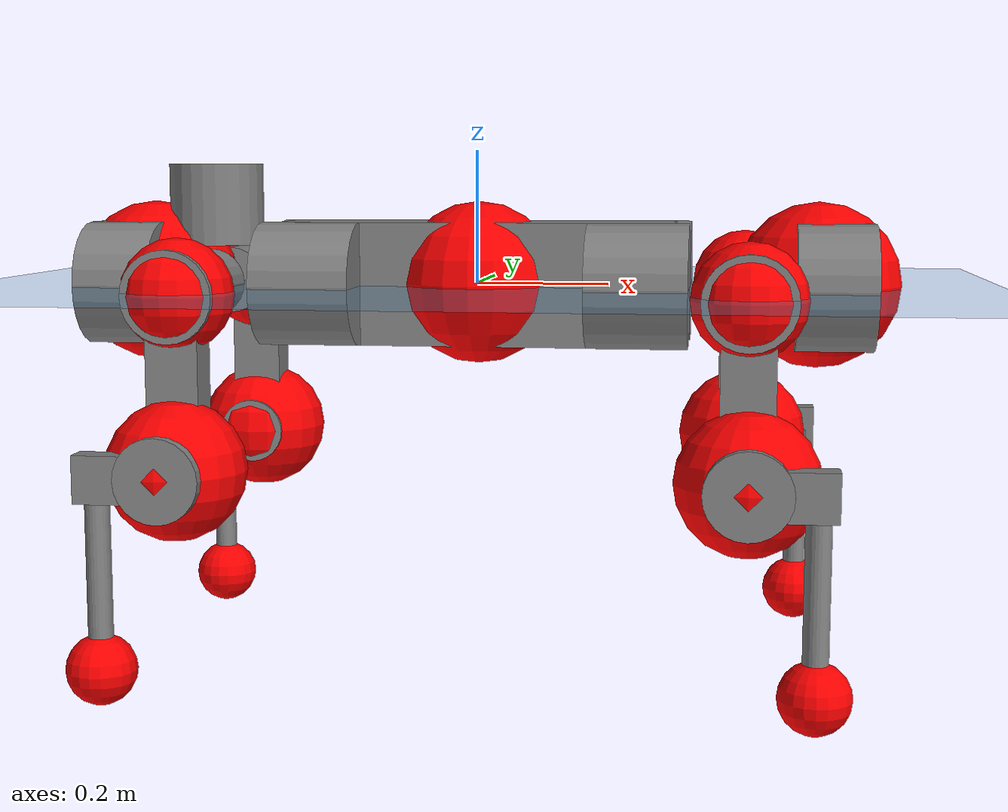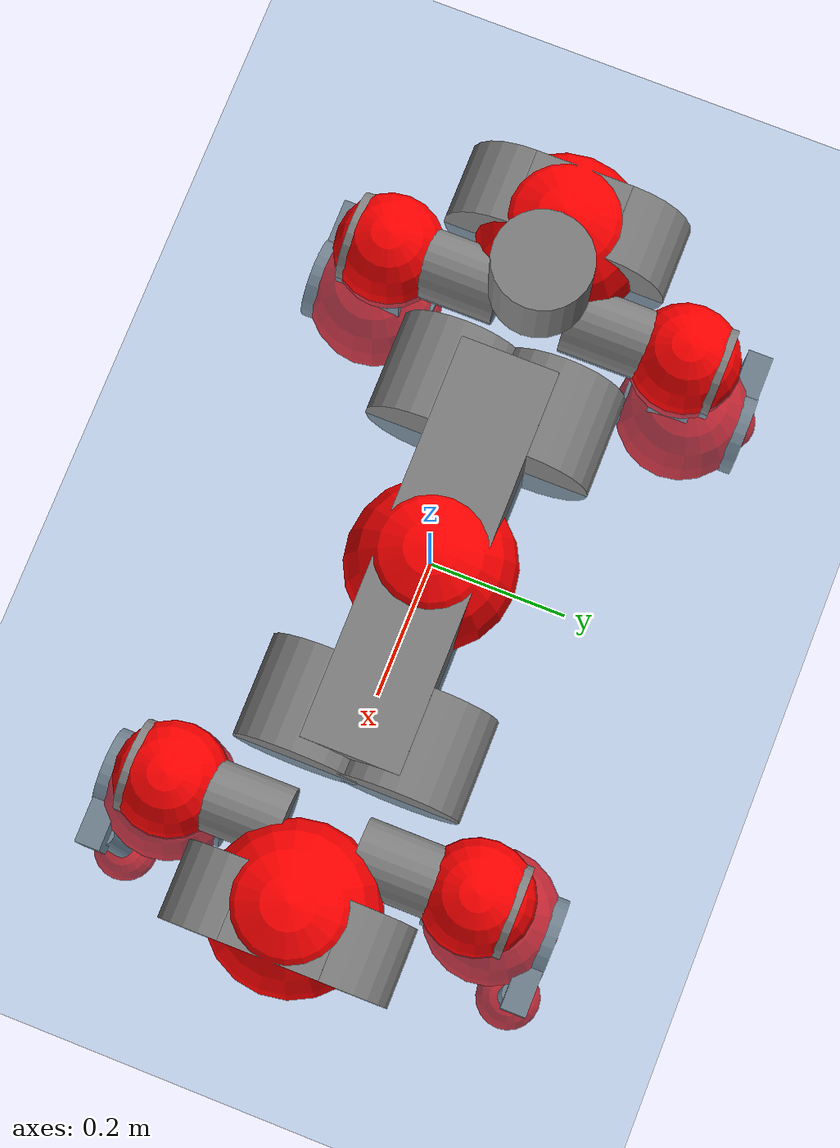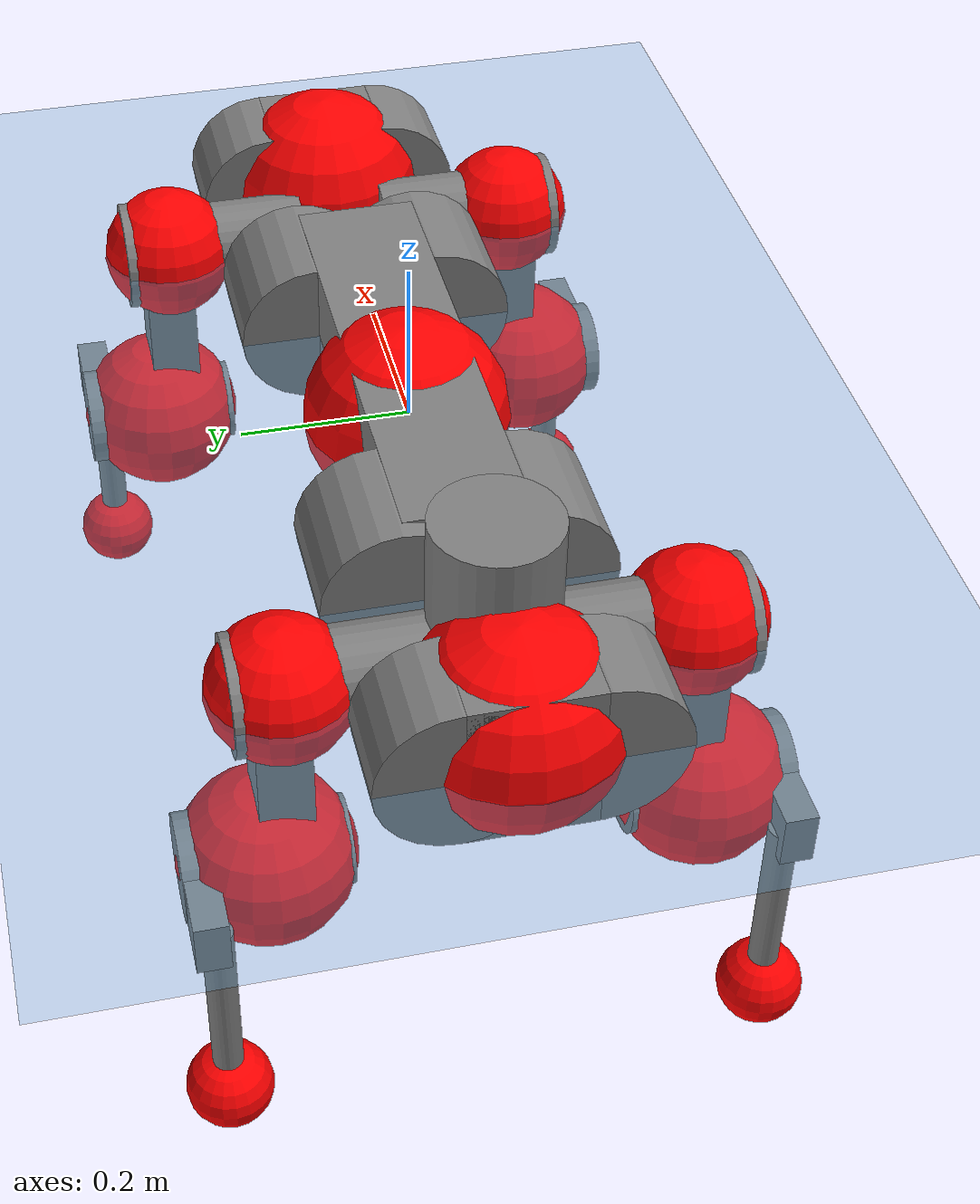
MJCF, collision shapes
<mujoco model="anymal_c">
  <compiler angle="radian" assetdir="assets" balanceinertia="true" inertiafromgeom="false"/>

  <option timestep="0.005" density="1.2" viscosity="2e-05"/>

  <size nkey="1"/>

  <visual>
    <quality shadowsize="8192"/>
    <map shadowclip="0.5"/>
  </visual>

  <default>
    <default class="/">
      <material specular="0" shininess="0.25"/>
      <geom contype="0" conaffinity="0" group="1" solref="-1000 -80"/>
      <site size="0.01 0.005 0.005" group="5"/>
      <general forcelimited="true" forcerange="-80 80" biastype="affine" gainprm="80" biasprm="0 -80 -2"/>
      <default class="anymal_c">
        <joint armature="0.01" damping="0.01" frictionloss="0.1"/>
        <default class="visual">
          <geom type="mesh" group="2"/>
          <default class="visual_zflip"/>
        </default>
        <default class="collision">
          <geom type="cylinder" group="3"/>
          <default class="foot">
            <geom size="0.03 0 0" type="sphere" condim="6" priority="1" friction="0.8 0.02 0.01" solimp="0.015 1 0.03"/>
          </default>
        </default>
      </default>
      <default class="reward_collision_sphere">
        <geom group="5" rgba="1 0 0 1"/>
      </default>
    </default>
  </default>

  <asset>
    <texture type="skybox" colorspace="auto" name="//unnamed_texture_0" builtin="gradient" rgb1="0.95 0.95 0.95" rgb2="0.95 0.95 0.95" width="100" height="600"/>
    <texture type="2d" colorspace="auto" name="texplane" builtin="checker" rgb1="0.345 0.575 0.748" rgb2="0.345 0.575 0.748" markrgb="1 1 1" width="512" height="512"/>
    <texture type="2d" colorspace="linear" name="base" file="base.png"/>
    <texture type="2d" colorspace="linear" name="top_shell" file="top_shell.png"/>
    <texture type="2d" colorspace="linear" name="bottom_shell" file="bottom_shell.png"/>
    <texture type="2d" colorspace="linear" name="remote" file="remote.png"/>
    <texture type="2d" colorspace="linear" name="hatch" file="hatch.png"/>
    <texture type="2d" colorspace="linear" name="handle" file="handle.png"/>
    <texture type="2d" colorspace="linear" name="face" file="face.png"/>
    <texture type="2d" colorspace="linear" name="battery" file="battery.png"/>
    <texture type="2d" colorspace="linear" name="lidar_cage" file="lidar_cage.png"/>
    <texture type="2d" colorspace="linear" name="depth_camera" file="depth_camera.png"/>
    <texture type="2d" colorspace="linear" name="wide_angle_camera" file="wide_angle_camera.png"/>
    <texture type="2d" colorspace="linear" name="lidar" file="lidar.png"/>
    <texture type="2d" colorspace="linear" name="drive" file="drive.png"/>
    <texture type="2d" colorspace="linear" name="hip_l" file="hip_l.png"/>
    <texture type="2d" colorspace="linear" name="shank_l" file="shank_l.png"/>
    <texture type="2d" colorspace="linear" name="foot" file="foot.png"/>
    <texture type="2d" colorspace="linear" name="thigh" file="thigh.png"/>
    <texture type="2d" colorspace="linear" name="shank_r" file="shank_r.png"/>
    <texture type="2d" colorspace="linear" name="hip_r" file="hip_r.png"/>
    <material name="MatPlane" class="/" texture="texplane" texuniform="true" texrepeat="2 2" specular="0.9" shininess="0.5"/>
    <material name="black_plastic" class="/" rgba="0.007 0.007 0.007 1"/>
    <material name="green" class="/" rgba="0.052 0.178 0.033 1"/>
    <material name="red" class="/" rgba="0.178 0.006 0.005 1"/>
    <material name="yellow" class="/" rgba="0.178 0.119 0.006 1"/>
    <material name="lwl" class="/" rgba="0.8 0.8 0.8 1"/>
    <material name="base" class="/" texture="base"/>
    <material name="top_shell" class="/" texture="top_shell"/>
    <material name="bottom_shell" class="/" texture="bottom_shell"/>
    <material name="hip_l" class="/" texture="hip_l"/>
    <material name="thigh" class="/" texture="thigh"/>
    <material name="shank_l" class="/" texture="shank_l"/>
    <material name="foot" class="/" texture="foot"/>
    <material name="hip_r" class="/" texture="hip_r"/>
    <material name="shank" class="/" texture="shank_r"/>
    <material name="hatch" class="/" texture="hatch"/>
    <material name="remote" class="/" texture="remote"/>
    <material name="handle" class="/" texture="handle"/>
    <material name="face" class="/" texture="face"/>
    <material name="depth_camera" class="/" texture="depth_camera"/>
    <material name="wide_angle_camera" class="/" texture="wide_angle_camera"/>
    <material name="battery" class="/" texture="battery"/>
    <material name="lidar_cage" class="/" texture="lidar_cage"/>
    <material name="lidar" class="/" texture="lidar"/>
    <material name="drive" class="/" texture="drive"/>
    <mesh name="base_0" class="/" file="base_0.obj"/>
    <mesh name="base_1" class="/" file="base_1.obj"/>
    <mesh name="base_2" class="/" file="base_2.obj"/>
    <mesh name="base_3" class="/" file="base_3.obj"/>
    <mesh name="base_4" class="/" file="base_4.obj"/>
    <mesh name="base_5" class="/" file="base_5.obj"/>
    <mesh name="top_shell" class="/" file="top_shell.obj"/>
    <mesh name="bottom_shell" class="/" file="bottom_shell.obj"/>
    <mesh name="remote" class="/" file="remote.obj"/>
    <mesh name="handle" class="/" file="handle.obj"/>
    <mesh name="face" class="/" file="face.obj"/>
    <mesh name="wide_angle_camera" class="/" file="wide_angle_camera.obj"/>
    <mesh name="depth_camera" class="/" file="depth_camera.obj"/>
    <mesh name="battery" class="/" file="battery.obj"/>
    <mesh name="lidar_cage" class="/" file="lidar_cage.obj"/>
    <mesh name="lidar" class="/" file="lidar.obj"/>
    <mesh name="drive" class="/" file="drive.obj"/>
    <mesh name="hip_l" class="/" file="hip_l.obj"/>
    <mesh name="thigh" class="/" file="thigh.obj"/>
    <mesh name="shank_l" class="/" file="shank_l.obj"/>
    <mesh name="foot" class="/" file="foot.obj"/>
    <mesh name="hip_r" class="/" file="hip_r.obj"/>
    <mesh name="hatch" class="/" file="hatch.obj"/>
    <mesh name="shank_r" class="/" file="shank_r.obj"/>
  </asset>

  <worldbody>
    <geom name="floor" class="/" size="100 100 0.125" type="plane" group="0" material="MatPlane"/>
    <light name="toplight_shadow" class="/" pos="0 0 5" dir="0.0990148 0.0990148 -0.990148" type="directional" ambient="0.04 0.04 0.04" diffuse="0.55 0.55 0.55" specular="0.12 0.12 0.12"/>
    <light name="toplight_fill" class="/" pos="0 0 5" dir="0.0990148 0.0990148 -0.990148" type="directional" castshadow="false" ambient="0.04 0.04 0.04" diffuse="0.3 0.3 0.3" specular="0.08 0.08 0.08"/>
    <body name="trunk" childclass="anymal_c" pos="0.00165615 0.00220237 0.00102532" quat="1 -0.000169618 -0.000345166 0.000103242">
      <inertial pos="0.00285074 0.000618474 0.0428853" quat="0.499019 0.490288 0.509739 0.500763" mass="21.2778" diaginertia="1.25005 0.921771 0.118074"/>
      <joint name="//unnamed_joint_0" type="free" armature="0" damping="0" frictionloss="0"/>
      <geom name="//unnamed_geom_1" class="visual" material="green" mesh="base_0"/>
      <geom name="//unnamed_geom_2" class="visual" material="yellow" mesh="base_1"/>
      <geom name="//unnamed_geom_3" class="visual" material="red" mesh="base_2"/>
      <geom name="//unnamed_geom_4" class="visual" material="black_plastic" mesh="base_3"/>
      <geom name="//unnamed_geom_5" class="visual" material="lwl" mesh="base_4"/>
      <geom name="//unnamed_geom_6" class="visual" material="base" mesh="base_5"/>
      <geom name="trunk_1" class="collision" size="0.298516 0.0720557 0.092643" type="box"/>
      <geom name="trunk_2" class="collision" size="0.092643 0.0746291" pos="0.246379 0.0748439 0" quat="0.707107 0 0.707107 0"/>
      <geom name="trunk_3" class="collision" size="0.092643 0.0746291" pos="-0.246379 0.0748439 0" quat="0.707107 0 0.707107 0"/>
      <geom name="trunk_4" class="collision" size="0.092643 0.0746291" pos="0.246379 -0.0748439 0" quat="0.707107 0 0.707107 0"/>
      <geom name="trunk_5" class="collision" size="0.092643 0.0746291" pos="-0.246379 -0.0748439 0" quat="0.707107 0 0.707107 0"/>
      <geom name="//unnamed_geom_12" class="visual" material="top_shell" mesh="top_shell"/>
      <geom name="//unnamed_geom_13" class="visual" material="bottom_shell" mesh="bottom_shell"/>
      <geom name="//unnamed_geom_14" class="visual" material="remote" mesh="remote"/>
      <geom name="//unnamed_geom_15" class="visual" material="handle" mesh="handle"/>
      <geom name="//unnamed_geom_16" class="visual" pos="0.469537 0 0" quat="1 0 0 0" material="face" mesh="face"/>
      <geom name="trunk_6" class="collision" size="0.0566152 0.0720557 0.092643" pos="0.531839 0 0" type="box"/>
      <geom name="//unnamed_geom_18" class="collision" size="0.092643 0.0566152" pos="0.531839 0.0748439 0" quat="0.707107 0 0.707107 0"/>
      <geom name="//unnamed_geom_19" class="collision" size="0.092643 0.0566152" pos="0.531839 -0.0748439 0" quat="0.707107 0 0.707107 0"/>
      <geom name="//unnamed_geom_20" class="visual" pos="0.522937 0 -0.0240002" quat="0.965926 0 0.258819 0" material="depth_camera" mesh="depth_camera"/>
      <geom name="//unnamed_geom_21" class="visual" pos="0.581115 0 0.0132653" material="wide_angle_camera" mesh="wide_angle_camera"/>
      <geom name="//unnamed_geom_22" class="visual_zflip" pos="-0.469537 0 0" quat="0 0 0 1" material="face" mesh="face"/>
      <geom name="trunk_7" class="collision" size="0.0566152 0.0720557 0.092643" pos="-0.531839 0 0" quat="0 0 0 1" type="box"/>
      <geom name="//unnamed_geom_24" class="collision" size="0.092643 0.0566152" pos="-0.531839 -0.0748439 0" quat="0 -0.707107 0 0.707107"/>
      <geom name="//unnamed_geom_25" class="collision" size="0.092643 0.0566152" pos="-0.531839 0.0748439 0" quat="0 -0.707107 0 0.707107"/>
      <geom name="//unnamed_geom_26" class="visual" pos="-0.522937 0 -0.0240002" quat="0 -0.258819 0 0.965926" material="depth_camera" mesh="depth_camera"/>
      <geom name="//unnamed_geom_27" class="visual_zflip" pos="-0.581115 0 0.0132653" quat="0 0 0 1" material="wide_angle_camera" mesh="wide_angle_camera"/>
      <geom name="//unnamed_geom_28" class="visual" material="battery" mesh="battery"/>
      <geom name="//unnamed_geom_29" class="visual" pos="0 0.0809063 0.0276165" quat="0.683013 -0.183013 0.183013 0.683013" material="depth_camera" mesh="depth_camera"/>
      <geom name="//unnamed_geom_30" class="visual" pos="0 -0.0809063 0.0276165" quat="0.683013 0.183013 0.183013 -0.683013" material="depth_camera" mesh="depth_camera"/>
      <geom name="//unnamed_geom_31" class="visual" pos="-0.412331 0 0.0651301" quat="1 0 0 0" material="lidar_cage" mesh="lidar_cage"/>
      <geom name="trunk_8" class="collision" size="0.0720557 0.061762" pos="-0.412331 0 0.118298"/>
      <geom name="//unnamed_geom_33" class="visual" pos="-0.412331 -2.4979e-05 0.126007" quat="0.707107 0 0 -0.707107" material="lidar" mesh="lidar"/>
      <geom name="//unnamed_geom_34" class="visual" pos="0.33972 0.111132 3.15805e-09" quat="0.258819 0.965926 0 0" material="drive" mesh="drive"/>
      <geom name="//unnamed_geom_35" class="visual" pos="0.33972 -0.111132 -3.15805e-09" quat="0.258819 -0.965926 0 0" material="drive" mesh="drive"/>
      <geom name="//unnamed_geom_36" class="visual" pos="-0.33972 0.111132 -3.15805e-09" quat="0 0 0.965926 -0.258819" material="drive" mesh="drive"/>
      <geom name="//unnamed_geom_37" class="visual" pos="-0.33972 -0.111132 3.15805e-09" quat="0 0 -0.965926 -0.258819" material="drive" mesh="drive"/>
      <geom name="//unnamed_geom_38" class="visual" pos="0.131402 0 0.064687" quat="1 0 0 0" material="hatch" mesh="hatch"/>
      <geom name="//unnamed_geom_39" class="reward_collision_sphere" size="0.123524"/>
      <geom name="//unnamed_geom_40" class="reward_collision_sphere" size="0.123524" pos="0.50975 0 0"/>
      <geom name="//unnamed_geom_41" class="reward_collision_sphere" size="0.123524" pos="-0.50975 0 0"/>
      <site name="imu" pos="0.287684 0.0116171 0.0369865" size="0.0102937"/>
      <camera name="track" pos="0 -2.1384 0" quat="0.707107 0.707107 0 0" mode="trackcom"/>
      <camera name="ego_camera" pos="0.50975 0 -0.035445" quat="-0.5 -0.5 0.5 0.5"/>
      <body name="LF_HIP" pos="0.339413 0.110524 -0.00342412" quat="0.258208 0.966089 0.000169163 -0.000700648">
        <inertial pos="0.0630552 -0.0182804 -0.00755213" quat="-0.127705 0.709025 -0.13762 0.679733" mass="3.04372" diaginertia="0.0109807 0.00671055 0.00183149"/>
        <joint name="LF_HAA" pos="0 0 0" axis="1 -4.76111e-05 3.99756e-05" range="-0.699085 0.48574" armature="0.00992672" damping="0.0117514" frictionloss="0.116633"/>
        <geom name="//unnamed_geom_42" class="visual" pos="0 0.000185774 -3.05132e-05" quat="0.258819 -0.965926 0 0" material="hip_l" mesh="hip_l"/>
        <geom name="//unnamed_geom_43" class="visual" pos="0.0678534 -0.0813167 -0.0455941" quat="0.183013 -0.683013 0.683013 0.183013" material="drive" mesh="drive"/>
        <geom name="//unnamed_geom_44" class="collision" size="0.0514683 0.0720557" pos="0.0678534 -0.0127874 -0.00611868" quat="-0.353553 -0.612372 0.612372 -0.353553"/>
        <body name="LF_THIGH" pos="0.0652749 -0.0783499 -0.039313" quat="0.182512 -0.683628 0.682373 0.1836">
          <inertial pos="0.0358575 0.000283699 -0.218126" quat="0.99316 -0.00224634 -0.0894251 0.0750365" mass="3.23348" diaginertia="0.0547233 0.0407929 0.00224836"/>
          <joint name="LF_HFE" pos="0 0 0" axis="0.999877 -0.0046518 0.0150012" range="-3.10008 3.1357" armature="0.011505" damping="0" frictionloss="0.0884743"/>
          <geom name="//unnamed_geom_45" class="visual" pos="0.001265 1.99334e-06 0" quat="0.707107 0 0 -0.707107" material="thigh" mesh="thigh"/>
          <geom name="//unnamed_geom_46" class="collision" size="0.0669088 0.0411747" pos="0.0453111 0 0" quat="0.5 0.5 -0.5 -0.5"/>
          <geom name="//unnamed_geom_47" class="collision" size="0.0386013 0.030881 0.145464" pos="0.0339833 0 -0.125222" quat="0.707107 0 0 -0.707107" type="box"/>
          <geom name="//unnamed_geom_48" class="visual" pos="0.113618 0 -0.252545" quat="1 0 0 0" material="drive" mesh="drive"/>
          <geom name="//unnamed_geom_49" class="collision" size="0.0514683 0.0720557" pos="0.0343232 0 -0.252545" quat="0.707107 0 0.707107 0"/>
          <geom name="//unnamed_geom_50" class="reward_collision_sphere" size="0.0823493" pos="0.0283195 0 0"/>
          <body name="LF_SHANK" pos="0.112836 -0.00047952 -0.253613" quat="0.999999 0.000987009 -0.00065582 0.000428948">
            <inertial pos="0.00884688 -0.0660561 -0.0717879" quat="0.992517 -0.118447 -0.00468378 -0.029303" mass="0.687944" diaginertia="0.0190125 0.0134501 0.000616795"/>
            <joint name="LF_KFE" pos="0 0 0" axis="0.999959 0.00206819 -0.00881037" range="-3.1342 3.14382" armature="0.0105952" damping="0" frictionloss="0.0980996"/>
            <geom name="//unnamed_geom_51" class="visual" pos="0.000412488 0.00219941 0" quat="0.707107 0 0 -0.707107" material="shank_l" mesh="shank_l"/>
            <geom name="LF_kfe_act" class="collision" size="0.061762 0.0205873" pos="0.0226556 0 0" quat="0.5 0.5 -0.5 -0.5"/>
            <geom name="//unnamed_geom_53" class="collision" size="0.0591876 0.0347411 0.019558" pos="0.0226556 -0.0614778 0" quat="0.5 0.5 -0.5 -0.5" type="box"/>
            <geom name="//unnamed_geom_54" class="visual" pos="0.0147827 -0.0933272 -0.299483" quat="0.382683 0 0 -0.92388" material="foot" mesh="foot"/>
            <geom name="LF_calf" class="collision" size="0.0180139 0.1454" pos="0.0147828 -0.094036 -0.149742" quat="0.707107 0 0 -0.707107"/>
            <geom name="LF_foot" class="foot" size="0.0340424" pos="0.0147828 -0.094036 -0.279545" quat="0.707107 0 0 -0.707107"/>
            <geom name="//unnamed_geom_57" class="reward_collision_sphere" size="0.102937" pos="-0.0566389 0 0"/>
            <geom name="//unnamed_geom_58" class="reward_collision_sphere" size="0.0514683" pos="0.0147828 -0.094036 -0.279545"/>
            <site name="LF_foot" class="foot" pos="0.0147828 -0.094036 -0.279545" quat="0.707107 0 0 -0.707107" size="0.0102937"/>
          </body>
        </body>
      </body>
      <body name="RF_HIP" pos="0.339386 -0.111178 -0.00148397" quat="0.25908 -0.965856 0.000107364 9.04239e-05">
        <inertial pos="0.0649323 0.0183387 -0.00871774" quat="0.121811 0.677888 0.126256 0.713926" mass="3.05174" diaginertia="0.0111989 0.00671634 0.00182047"/>
        <joint name="RF_HAA" pos="0 0 0" axis="0.999951 0.00984005 -0.000770962" range="-0.516784 0.708923" armature="0.0104176" damping="0.00562725" frictionloss="0.0921359"/>
        <geom name="//unnamed_geom_59" class="visual" pos="0 -0.000185772 -3.05131e-05" quat="0.258819 0.965926 0 0" material="hip_r" mesh="hip_r"/>
        <geom name="//unnamed_geom_60" class="visual" pos="0.0678534 0.0813167 -0.0455941" quat="0.183013 0.683013 0.683013 -0.183013" material="drive" mesh="drive"/>
        <geom name="//unnamed_geom_61" class="collision" size="0.0514683 0.0720557" pos="0.0678534 0.0127874 -0.00611868" quat="-0.353553 0.612372 0.612372 0.353553"/>
        <body name="RF_THIGH" pos="0.0682541 0.0755601 -0.0352416" quat="0.182603 0.68321 0.682839 -0.183332">
          <inertial pos="0.0322672 -0.000169978 -0.216334" quat="0.992767 -0.00510768 -0.0807951 0.0886535" mass="3.42786" diaginertia="0.0570795 0.0425408 0.0023307"/>
          <joint name="RF_HFE" pos="0 0 0" axis="0.999911 0.00050408 -0.0133056" stiffness="0.013847" range="-3.12868 3.19389" armature="0.0095889" damping="0" frictionloss="0.103693"/>
          <geom name="//unnamed_geom_62" class="visual" pos="0.001265 1.99334e-06 0" quat="0.707107 0 0 -0.707107" material="thigh" mesh="thigh"/>
          <geom name="//unnamed_geom_63" class="collision" size="0.0669088 0.0411747" pos="0.0453111 0 0" quat="0.5 0.5 0.5 0.5"/>
          <geom name="//unnamed_geom_64" class="collision" size="0.0386013 0.030881 0.145464" pos="0.0339833 0 -0.125222" quat="0.707107 0 0 0.707107" type="box"/>
          <geom name="//unnamed_geom_65" class="visual" pos="0.113618 0 -0.252545" quat="1 0 0 0" material="drive" mesh="drive"/>
          <geom name="//unnamed_geom_66" class="collision" size="0.0514683 0.0720557" pos="0.0343232 0 -0.252545" quat="0.707107 0 0.707107 0"/>
          <geom name="//unnamed_geom_67" class="reward_collision_sphere" size="0.0823493" pos="0.0283195 0 0"/>
          <body name="RF_SHANK" pos="0.114755 0.0015836 -0.249933" quat="1 0.000244546 5.15916e-05 0.0001152">
            <inertial pos="0.00599959 0.062718 -0.0692687" quat="0.992935 0.115896 -0.00104572 0.0254437" mass="0.627892" diaginertia="0.0196914 0.0132803 0.000618557"/>
            <joint name="RF_KFE" pos="0 0 0" axis="0.999907 0.00916248 -0.0101326" stiffness="0.00434271" range="-3.16156 3.15725" armature="0.0100427" damping="0.0149584" frictionloss="0.112054"/>
            <geom name="//unnamed_geom_68" class="visual" pos="0.000412485 -0.0021994 0" quat="0.707107 0 0 0.707107" material="shank" mesh="shank_r"/>
            <geom name="RF_kfe_act" class="collision" size="0.061762 0.0205873" pos="0.0226556 0 0" quat="0.5 0.5 0.5 0.5"/>
            <geom name="//unnamed_geom_70" class="collision" size="0.0591876 0.0347411 0.019558" pos="0.0226556 0.0614778 0" quat="0.5 0.5 0.5 0.5" type="box"/>
            <geom name="//unnamed_geom_71" class="visual" pos="0.0147829 0.0933272 -0.299483" quat="0.382683 0 0 0.92388" material="foot" mesh="foot"/>
            <geom name="RF_calf" class="collision" size="0.0180139 0.1454" pos="0.0147828 0.094036 -0.149742" quat="0.707107 0 0 0.707107"/>
            <geom name="RF_foot" class="foot" size="0.0294313" pos="0.0147828 0.094036 -0.279545" quat="0.707107 0 0 0.707107"/>
            <geom name="//unnamed_geom_74" class="reward_collision_sphere" size="0.102937" pos="-0.0566389 0 0"/>
            <geom name="//unnamed_geom_75" class="reward_collision_sphere" size="0.0514683" pos="0.0147828 0.094036 -0.279545"/>
            <site name="RF_foot" class="foot" pos="0.0147828 0.094036 -0.279545" quat="0.707107 0 0 0.707107" size="0.0102937"/>
          </body>
        </body>
      </body>
      <body name="LH_HIP" pos="-0.339842 0.109479 -0.00138518" quat="-2.21091e-05 0.000420514 0.965874 -0.259011">
        <inertial pos="0.0653321 0.0162887 -0.00687082" quat="0.137871 0.685189 0.125293 0.704137" mass="2.91317" diaginertia="0.0107107 0.00683046 0.00174241"/>
        <joint name="LH_HAA" pos="0 0 0" axis="0.999893 0.0143544 -0.00291012" range="-0.439035 0.768304" armature="0.0101537" damping="0.0102853" frictionloss="0.0934095"/>
        <geom name="//unnamed_geom_76" class="visual" pos="0 -0.000185772 -3.05131e-05" quat="-0.258819 -0.965926 0 0" material="hip_r" mesh="hip_r"/>
        <geom name="//unnamed_geom_77" class="visual" pos="0.0678534 0.0813167 -0.0455941" quat="0.183013 0.683013 0.683013 -0.183013" material="drive" mesh="drive"/>
        <geom name="//unnamed_geom_78" class="collision" size="0.0514683 0.0720557" pos="0.0678534 0.0127874 -0.00611868" quat="-0.353553 0.612372 0.612372 0.353553"/>
        <body name="LH_THIGH" pos="0.0698268 0.0803131 -0.0358265" quat="0.182012 0.682882 0.68359 -0.18234">
          <inertial pos="0.0353941 0.000787991 -0.218614" quat="0.994038 -0.000335772 -0.0752206 0.0789367" mass="3.47648" diaginertia="0.0562664 0.0425938 0.00235385"/>
          <joint name="LH_HFE" pos="0 0 0" axis="0.999964 0.00783541 0.00310983" range="-3.08751 3.19553" armature="0.0108788" damping="0.0179612" frictionloss="0.113559"/>
          <geom name="//unnamed_geom_79" class="visual" pos="0.001265 1.99334e-06 0" quat="0.707107 0 0 -0.707107" material="thigh" mesh="thigh"/>
          <geom name="//unnamed_geom_80" class="collision" size="0.0669088 0.0411747" pos="0.0453111 0 0" quat="0.5 0.5 -0.5 -0.5"/>
          <geom name="//unnamed_geom_81" class="collision" size="0.0386013 0.030881 0.145464" pos="0.0339833 0 -0.125222" quat="0.707107 0 0 -0.707107" type="box"/>
          <geom name="//unnamed_geom_82" class="visual" pos="0.113618 0 -0.252545" quat="1 0 0 0" material="drive" mesh="drive"/>
          <geom name="//unnamed_geom_83" class="collision" size="0.0514683 0.0720557" pos="0.0343232 0 -0.252545" quat="0.707107 0 0.707107 0"/>
          <geom name="//unnamed_geom_84" class="reward_collision_sphere" size="0.0823493" pos="0.0283195 0 0"/>
          <body name="LH_SHANK" pos="0.110922 0.0018271 -0.253181" quat="1 0.000110947 -0.000157061 1.48218e-05">
            <inertial pos="0.00530613 0.06546 -0.0717253" quat="0.991502 0.128108 0.00466857 0.0221366" mass="0.633566" diaginertia="0.019178 0.0125643 0.000610643"/>
            <joint name="LH_KFE" pos="0 0 0" axis="0.999967 0.00471636 -0.00665191" range="-3.13488 3.08388" armature="0.0107002" damping="0.00954689" frictionloss="0.0905938"/>
            <geom name="//unnamed_geom_85" class="visual" pos="0.000412485 -0.0021994 0" quat="-0.707107 0 0 -0.707107" material="shank" mesh="shank_r"/>
            <geom name="LH_kfe_act" class="collision" size="0.061762 0.0205873" pos="0.0226556 0 0" quat="0.5 0.5 -0.5 -0.5"/>
            <geom name="//unnamed_geom_87" class="collision" size="0.0591876 0.0347411 0.019558" pos="0.0226556 0.0614778 0" quat="0.5 0.5 -0.5 -0.5" type="box"/>
            <geom name="//unnamed_geom_88" class="visual" pos="0.0147829 0.0933272 -0.299483" quat="-0.382683 0 0 -0.92388" material="foot" mesh="foot"/>
            <geom name="LH_calf" class="collision" size="0.0180139 0.1454" pos="0.0147828 0.094036 -0.149742" quat="0.707107 0 0 -0.707107"/>
            <geom name="LH_foot" class="foot" size="0.0287245" pos="0.0147828 0.094036 -0.279545" quat="0.707107 0 0 -0.707107"/>
            <geom name="//unnamed_geom_91" class="reward_collision_sphere" size="0.102937" pos="-0.0566389 0 0"/>
            <geom name="//unnamed_geom_92" class="reward_collision_sphere" size="0.0514683" pos="0.0147828 0.094036 -0.279545"/>
            <site name="LH_foot" class="foot" pos="0.0147828 0.094036 -0.279545" quat="0.707107 0 0 -0.707107" size="0.0102937"/>
          </body>
        </body>
      </body>
      <body name="RH_HIP" pos="-0.34052 -0.109133 0.000840499" quat="0.00046031 -0.000763737 -0.965937 -0.258774">
        <inertial pos="0.0667938 -0.0136975 -0.00711934" quat="-0.126289 0.707163 -0.134401 0.682575" mass="3.02592" diaginertia="0.0113059 0.0071095 0.00186055"/>
        <joint name="RH_HAA" pos="0 0 0" axis="0.999994 -0.00334847 0.000768724" range="-0.725406 0.529681" armature="0.00929439" damping="0.0244839" frictionloss="0.101182"/>
        <geom name="//unnamed_geom_93" class="visual" pos="0 0.000185774 -3.05132e-05" quat="-0.258819 0.965926 0 0" material="hip_l" mesh="hip_l"/>
        <geom name="//unnamed_geom_94" class="visual" pos="0.0678534 -0.0813167 -0.0455941" quat="-0.183013 0.683013 -0.683013 -0.183013" material="drive" mesh="drive"/>
        <geom name="//unnamed_geom_95" class="collision" size="0.0514683 0.0720557" pos="0.0678534 -0.0127874 -0.00611868" quat="0.353553 0.612372 -0.612372 0.353553"/>
        <body name="RH_THIGH" pos="0.0671925 -0.0787183 -0.0358247" quat="-0.182412 0.682445 -0.683633 -0.183416">
          <inertial pos="0.0363289 0.00109083 -0.21589" quat="0.993223 -0.00571854 -0.0800894 0.084036" mass="3.31878" diaginertia="0.0571121 0.0429579 0.00229189"/>
          <joint name="RH_HFE" pos="0 0 0" axis="0.999999 0.000941924 -0.000650659" range="-3.1412 3.18711" armature="0.0112575" damping="0.00212272" frictionloss="0.0890863"/>
          <geom name="//unnamed_geom_96" class="visual" pos="0.001265 1.99334e-06 0" quat="0.707107 0 0 -0.707107" material="thigh" mesh="thigh"/>
          <geom name="//unnamed_geom_97" class="collision" size="0.0669088 0.0411747" pos="0.0453111 0 0" quat="0.5 0.5 0.5 0.5"/>
          <geom name="//unnamed_geom_98" class="collision" size="0.0386013 0.030881 0.145464" pos="0.0339833 0 -0.125222" quat="0.707107 0 0 0.707107" type="box"/>
          <geom name="//unnamed_geom_99" class="visual" pos="0.113618 0 -0.252545" quat="1 0 0 0" material="drive" mesh="drive"/>
          <geom name="//unnamed_geom_100" class="collision" size="0.0514683 0.0720557" pos="0.0343232 0 -0.252545" quat="0.707107 0 0.707107 0"/>
          <geom name="//unnamed_geom_101" class="reward_collision_sphere" size="0.0823493" pos="0.0283195 0 0"/>
          <body name="RH_SHANK" pos="0.11217 0.00147899 -0.251591" quat="1 0.000194005 0.000202185 -1.15329e-05">
            <inertial pos="0.00449953 -0.0660015 -0.0704241" quat="0.992973 -0.114515 -0.00346967 -0.0296376" mass="0.665841" diaginertia="0.0185134 0.0133699 0.000620686"/>
            <joint name="RH_KFE" pos="0 0 0" axis="0.999999 0.00031083 -0.00106248" range="-3.15528 3.1589" armature="0.0101616" damping="0.0122717" frictionloss="0.107621"/>
            <geom name="//unnamed_geom_102" class="visual" pos="0.000412488 0.00219941 0" quat="0.707107 0 0 -0.707107" material="shank_l" mesh="shank_l"/>
            <geom name="RH_kfe_act" class="collision" size="0.061762 0.0205873" pos="0.0226556 0 0" quat="0.5 0.5 0.5 0.5"/>
            <geom name="//unnamed_geom_104" class="collision" size="0.0591876 0.0347411 0.019558" pos="0.0226556 -0.0614778 0" quat="0.5 0.5 0.5 0.5" type="box"/>
            <geom name="//unnamed_geom_105" class="visual" pos="0.0147827 -0.0933272 -0.299483" quat="0.382683 0 0 -0.92388" material="foot" mesh="foot"/>
            <geom name="RH_calf" class="collision" size="0.0180139 0.1454" pos="0.0147828 -0.094036 -0.149742" quat="0.707107 0 0 0.707107"/>
            <geom name="RH_foot" class="foot" size="0.0313947" pos="0.0147828 -0.094036 -0.279545" quat="0.707107 0 0 0.707107"/>
            <geom name="//unnamed_geom_108" class="reward_collision_sphere" size="0.102937" pos="-0.0566389 0 0"/>
            <geom name="//unnamed_geom_109" class="reward_collision_sphere" size="0.0514683" pos="0.0147828 -0.094036 -0.279545"/>
            <site name="RH_foot" class="foot" pos="0.0147828 -0.094036 -0.279545" quat="0.707107 0 0 0.707107" size="0.0102937"/>
          </body>
        </body>
      </body>
    </body>
  </worldbody>

  <contact>
    <pair class="/" geom1="floor" geom2="LF_foot" name="//unnamed_contact_0"/>
    <pair class="/" geom1="floor" geom2="RF_foot" name="//unnamed_contact_1"/>
    <pair class="/" geom1="floor" geom2="LH_foot" name="//unnamed_contact_2"/>
    <pair class="/" geom1="floor" geom2="RH_foot" name="//unnamed_contact_3"/>
  </contact>

  <actuator>
    <general name="LF_HAA" class="/" joint="LF_HAA" forcerange="-82.3632 82.3632" gainprm="83.0648" biasprm="0 -83.0648 -2.20607"/>
    <general name="LF_HFE" class="/" joint="LF_HFE" forcerange="-75.9384 75.9384" gainprm="83.0648" biasprm="0 -83.0648 -2.20607"/>
    <general name="LF_KFE" class="/" joint="LF_KFE" forcerange="-90.5098 90.5098" gainprm="83.0648" biasprm="0 -83.0648 -2.20607"/>
    <general name="RF_HAA" class="/" joint="RF_HAA" forcerange="-84.6299 84.6299" gainprm="83.0648" biasprm="0 -83.0648 -2.20607"/>
    <general name="RF_HFE" class="/" joint="RF_HFE" forcerange="-83.4327 83.4327" gainprm="83.0648" biasprm="0 -83.0648 -2.20607"/>
    <general name="RF_KFE" class="/" joint="RF_KFE" forcerange="-91.376 91.376" gainprm="83.0648" biasprm="0 -83.0648 -2.20607"/>
    <general name="LH_HAA" class="/" joint="LH_HAA" forcerange="-83.0294 83.0294" gainprm="83.0648" biasprm="0 -83.0648 -2.20607"/>
    <general name="LH_HFE" class="/" joint="LH_HFE" forcerange="-91.6076 91.6076" gainprm="83.0648" biasprm="0 -83.0648 -2.20607"/>
    <general name="LH_KFE" class="/" joint="LH_KFE" forcerange="-74.8819 74.8819" gainprm="83.0648" biasprm="0 -83.0648 -2.20607"/>
    <general name="RH_HAA" class="/" joint="RH_HAA" forcerange="-84.975 84.975" gainprm="83.0648" biasprm="0 -83.0648 -2.20607"/>
    <general name="RH_HFE" class="/" joint="RH_HFE" forcerange="-88.645 88.645" gainprm="83.0648" biasprm="0 -83.0648 -2.20607"/>
    <general name="RH_KFE" class="/" joint="RH_KFE" forcerange="-81.5913 81.5913" gainprm="83.0648" biasprm="0 -83.0648 -2.20607"/>
  </actuator>

  <sensor>
    <gyro site="imu" name="imu_angular_velocity"/>
    <velocimeter site="imu" name="imu_linear_velocity"/>
    <framelinvel objtype="site" objname="LF_foot" name="LF_foot_global_linear_velocity"/>
    <framelinvel objtype="site" objname="RF_foot" name="RF_foot_global_linear_velocity"/>
    <framelinvel objtype="site" objname="LH_foot" name="LH_foot_global_linear_velocity"/>
    <framelinvel objtype="site" objname="RH_foot" name="RH_foot_global_linear_velocity"/>
  </sensor>

  <keyframe>
    <key name="home" qpos="0 0 0.55 1 0 0 0 0 0.4 -0.8 0 -0.4 0.8 0 -0.4 0.8 0 0.4 -0.8"/>
  </keyframe>
</mujoco>
